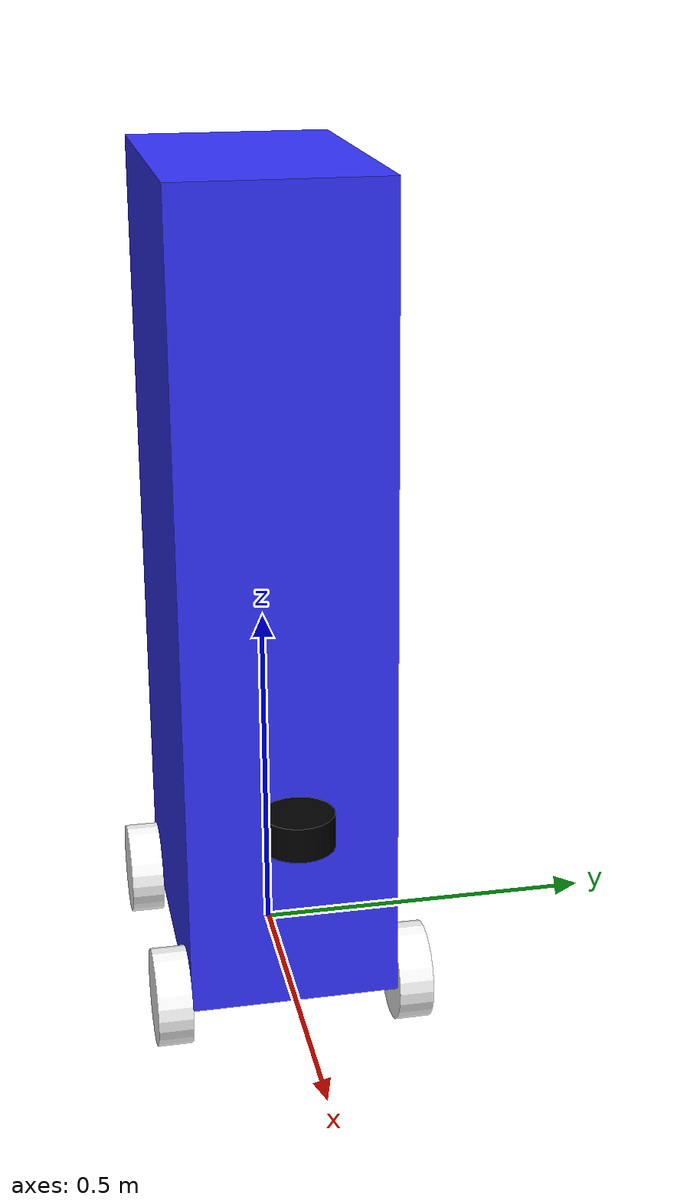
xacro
<?xml version="1.0"?>
<robot xmlns:xacro="http://www.ros.org/wiki/xacro"  name="robot">

	<xacro:include filename="robot_core.xacro"/>
	<xacro:include filename="gazebo_control.xacro"/>
	<xacro:include filename="lidar.xacro"/>
	<xacro:include filename="ros2_control.xacro"/>

</robot>

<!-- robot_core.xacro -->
<robot xmlns:xacro="http://www.ros.org/wiki/xacro"  name="robot">
    <!-- Main URDF file for Differential Drive Robot -->

    <!-- Include general xacro files -->
    <xacro:include filename="common.xacro"/>

    <!-- Robot Variables -->
    <xacro:property name="chassis_length" value="0.5"/>
    <xacro:property name="chassis_width" value="0.3"/>
    <xacro:property name="chassis_height" value="1.17"/>
    <xacro:property name="chassis_mass" value="22.2"/>
    <xacro:property name="wheel_radius" value="0.07"/>
    <xacro:property name="wheel_thickness" value="0.05"/>
    <xacro:property name="wheel_mass" value="0.2"/>
    <xacro:property name="wheel_offset_x" value="0.2"/>
    <xacro:property name="wheel_offset_y" value="${chassis_width/2 + wheel_thickness/2}"/>
    <xacro:property name="wheel_offset_z" value="0.0"/>

    <!-- Base Link -->
    <link name="base_link"></link>

    <!-- Base Footprint -->
    <joint name="base_footprint_joint" type="fixed">
        <parent link="base_link"/>
        <child link="base_footprint"/>
        <origin xyz="0 0 0" rpy="0 0 0"/>
    </joint>
    <link name="base_footprint"></link>

    <!-- Chassis -->
    <joint name="chassis_joint" type="fixed">
        <parent link="base_link"/>
        <child link="chassis_link"/>
        <origin xyz="0 0 0"/>
    </joint>
    <link name="chassis_link">
        <visual>
            <origin xyz="0 0 ${chassis_height/2}"/>
            <geometry>
                <box size="${chassis_length} ${chassis_width} ${chassis_height}"/>
            </geometry>
            <material name="blue"/>
        </visual>
        <collision>
            <origin xyz="0 0 ${chassis_height/2}"/>
            <geometry>
                <box size="${chassis_length} ${chassis_width} ${chassis_height}"/>
            </geometry>
        </collision>
        <xacro:inertial_box mass="0.5" x="${chassis_length}" y="${chassis_width}" z="${chassis_height}">
            <origin xyz="0 0 ${chassis_height/2}" rpy="0 0 0"/>
        </xacro:inertial_box>
    </link>

    <!-- Front Left Wheel -->
    <joint name="front_left_wheel_joint" type="continuous">
        <parent link="base_link"/>
        <child link="front_left_wheel"/>
        <origin xyz="${wheel_offset_x} ${wheel_offset_y} 0" rpy="-${pi/2} 0 0" />
        <axis xyz="0 0 1"/>
    </joint>
    <transmission name="front_left_wheel_trans">
        <type>transmission_interface/SimpleTransmission</type>
        <joint name="front_left_wheel_joint">
            <hardwareInterface>hardware_interface/VelocityJointInterface</hardwareInterface>
        </joint>
        <actuator name="front_left_motor">
            <hardwareInterface>hardware_interface/VelocityJointInterface</hardwareInterface>
        </actuator>
    </transmission>
    <link name="front_left_wheel">
        <visual>
            <geometry>
                <cylinder radius="${wheel_radius}" length="${wheel_thickness}"/>
            </geometry>
            <material name="white"/>
        </visual>
        <collision>
            <geometry>
                <sphere radius="${wheel_radius}"/>
            </geometry>
        </collision>
        <xacro:inertial_cylinder mass="${wheel_mass}" length="${wheel_thickness}" radius="${wheel_radius}">
            <origin xyz="0 0 0" rpy="0 0 0"/>
        </xacro:inertial_cylinder>
    </link>

    <!-- Front Right Wheel -->
    <joint name="front_right_wheel_joint" type="continuous">
        <parent link="base_link"/>
        <child link="front_right_wheel"/>
        <origin xyz="${wheel_offset_x} ${-wheel_offset_y} 0" rpy="${pi/2} 0 0" />
        <axis xyz="0 0 -1"/>
    </joint>
    <transmission name="front_right_wheel_trans">
        <type>transmission_interface/SimpleTransmission</type>
        <joint name="front_right_wheel_joint">
            <hardwareInterface>hardware_interface/VelocityJointInterface</hardwareInterface>
        </joint>
        <actuator name="front_right_motor">
            <hardwareInterface>hardware_interface/VelocityJointInterface</hardwareInterface>
        </actuator>
    </transmission>
    <link name="front_right_wheel">
        <visual>
            <geometry>
                <cylinder radius="${wheel_radius}" length="${wheel_thickness}"/>
            </geometry>
            <material name="white"/>
        </visual>
        <collision>
            <geometry>
                <sphere radius="${wheel_radius}"/>
            </geometry>
        </collision>
        <xacro:inertial_cylinder mass="${wheel_mass}" length="${wheel_thickness}" radius="${wheel_radius}">
            <origin xyz="0 0 0" rpy="0 0 0"/>
        </xacro:inertial_cylinder>
    </link>

    <!-- Rear Left Wheel -->
    <joint name="rear_left_wheel_joint" type="continuous">
        <parent link="base_link"/>
        <child link="rear_left_wheel"/>
        <origin xyz="${-wheel_offset_x} ${wheel_offset_y} 0" rpy="-${pi/2} 0 0" />
        <axis xyz="0 0 1"/>
    </joint>
    <transmission name="rear_left_wheel_trans">
        <type>transmission_interface/SimpleTransmission</type>
        <joint name="rear_left_wheel_joint">
            <hardwareInterface>hardware_interface/VelocityJointInterface</hardwareInterface>
        </joint>
        <actuator name="rear_left_motor">
            <hardwareInterface>hardware_interface/VelocityJointInterface</hardwareInterface>
        </actuator>
    </transmission>
    <link name="rear_left_wheel">
        <visual>
            <geometry>
                <cylinder radius="${wheel_radius}" length="${wheel_thickness}"/>
            </geometry>
            <material name="white"/>
        </visual>
        <collision>
            <geometry>
                <sphere radius="${wheel_radius}"/>
            </geometry>
        </collision>
        <xacro:inertial_cylinder mass="${wheel_mass}" length="${wheel_thickness}" radius="${wheel_radius}">
            <origin xyz="0 0 0" rpy="0 0 0"/>
        </xacro:inertial_cylinder>
    </link>

    <!-- Rear Right Wheel -->
    <joint name="rear_right_wheel_joint" type="continuous">
        <parent link="base_link"/>
        <child link="rear_right_wheel"/>
        <origin xyz="${-wheel_offset_x} ${-wheel_offset_y} 0" rpy="${pi/2} 0 0" />
        <axis xyz="0 0 -1"/>
    </joint>
    <transmission name="rear_right_wheel_trans">
        <type>transmission_interface/SimpleTransmission</type>
        <joint name="rear_right_wheel_joint">
            <hardwareInterface>hardware_interface/VelocityJointInterface</hardwareInterface>
        </joint>
        <actuator name="rear_right_motor">
            <hardwareInterface>hardware_interface/VelocityJointInterface</hardwareInterface>
        </actuator>
    </transmission>
    <link name="rear_right_wheel">
        <visual>
            <geometry>
                <cylinder radius="${wheel_radius}" length="${wheel_thickness}"/>
            </geometry>
            <material name="white"/>
        </visual>
        <collision>
            <geometry>
                <sphere radius="${wheel_radius}"/>
            </geometry>
        </collision>
        <xacro:inertial_cylinder mass="${wheel_mass}" length="${wheel_thickness}" radius="${wheel_radius}">
            <origin xyz="0 0 0" rpy="0 0 0"/>
        </xacro:inertial_cylinder>
    </link>

    <!-- Gazebo -->
    <gazebo reference="chassis_link">
        <material>Gazebo/Blue</material>
    </gazebo>

    <gazebo reference="front_left_wheel">
        <material>Gazebo/White</material>
    </gazebo>

    <gazebo reference="front_right_wheel">
        <material>Gazebo/White</material>
    </gazebo>

    <gazebo reference="rear_left_wheel">
        <material>Gazebo/White</material>
    </gazebo>

    <gazebo reference="rear_right_wheel">
        <material>Gazebo/White</material>
    </gazebo>

</robot>

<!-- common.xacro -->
<robot xmlns:xacro="http://www.ros.org/wiki/xacro" >
    <!-- This file contains the macros used across the URDF files -->

    <!-- Inertial Macros -->
    <!-- Inertial Sphere Macros -->
    <xacro:macro name="inertial_sphere" params="mass radius *origin">
        <inertial>
            <xacro:insert_block name="origin"/>
            <mass value="${mass}" />
            <inertia ixx="${(2/5) * mass * (radius*radius)}" ixy="0.0" ixz="0.0"
                    iyy="${(2/5) * mass * (radius*radius)}" iyz="0.0"
                    izz="${(2/5) * mass * (radius*radius)}" />
        </inertial>
    </xacro:macro>
    <!-- Inertial Box Macros -->
    <xacro:macro name="inertial_box" params="mass x y z *origin">
        <inertial>
            <xacro:insert_block name="origin"/>
            <mass value="${mass}" />
            <inertia ixx="${(1/12) * mass * (y*y+z*z)}" ixy="0.0" ixz="0.0"
                    iyy="${(1/12) * mass * (x*x+z*z)}" iyz="0.0"
                    izz="${(1/12) * mass * (x*x+y*y)}" />
        </inertial>
    </xacro:macro>
    <!-- Inertial Cylinder Macros -->
    <xacro:macro name="inertial_cylinder" params="mass length radius *origin">
        <inertial>
            <xacro:insert_block name="origin"/>
            <mass value="${mass}" />
            <inertia ixx="${(1/12) * mass * (3*radius*radius + length*length)}" ixy="0.0" ixz="0.0"
                    iyy="${(1/12) * mass * (3*radius*radius + length*length)}" iyz="0.0"
                    izz="${(1/2) * mass * (radius*radius)}" />
        </inertial>
    </xacro:macro>

    <!-- Material Macros -->
    <material name="white">
        <color rgba="1 1 1 1" />
    </material>

    <material name="orange">
        <color rgba="1 0.3 0.1 1"/>
    </material>

    <material name="blue">
        <color rgba="0.2 0.2 1 1"/>
    </material>

    <material name="black">
        <color rgba="0 0 0 1"/>
    </material>

    <material name="red">
        <color rgba="1 0 0 1"/>
    </material>

    <material name="grey">
        <color rgba="0.5 0.5 0.5 1.0"/>
    </material>

    <material name="purple">
        <color rgba="0.78 0.153 0.71 1"/>
    </material>

    <material name="green">
        <color rgba="0.149 0.612 0.082 1"/>
    </material>
</robot>

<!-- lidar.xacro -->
<robot xmlns:xacro="http://www.ros.org/wiki/xacro" >
    <!-- Lidar's urdf-->
    <joint name="laser_joint" type="fixed">
        <parent link="chassis_link"/>
        <child link="laser_link"/>
        <origin xyz="0.3 0 0.3" rpy="0 0 0"/>
    </joint>

    <link name="laser_link">
        <visual>
            <geometry>
                <cylinder radius="0.05" length="0.05"/>
            </geometry>
            <material name="black"/>
        </visual>
        <collision>
            <geometry>
                <cylinder radius="0.05" length="0.05"/>
            </geometry>
        </collision>
        <xacro:inertial_cylinder mass="0.1" length="0.05" radius="0.05">
            <origin xyz="0 0 0" rpy="0 0 0"/>
        </xacro:inertial_cylinder>
    </link>

    <!-- 2D Lidar Gazebo Sensor Plugin  -->
    <gazebo reference="laser_link">
        <material>Gazebo/Black</material>

        <sensor name="laser" type="ray">
            <pose> 0 0 0 0 0 0 </pose>
            <visualize>true</visualize>
            <update_rate>10</update_rate>
            <ray>
                <scan>
                    <horizontal>
                        <samples>140</samples>
                        <min_angle>-1.2217</min_angle> <!-- Ângulo de -70º -->
                        <max_angle>1.2217</max_angle>  <!-- Ângulo de 70º -->
                    </horizontal>
                </scan>
                <range>
                    <min>0.02</min>
                    <max>12</max>
                </range>
            </ray>

            <plugin name="laser_controller" filename="libgazebo_ros_ray_sensor.so">
                <ros>
                    <argument>--ros-args --remap ~/out:=scan_gazebo</argument>
                </ros>
                <output_type>sensor_msgs/LaserScan</output_type>
                <frame_name>laser_link</frame_name>
            </plugin>
        </sensor>
    </gazebo>

</robot>
